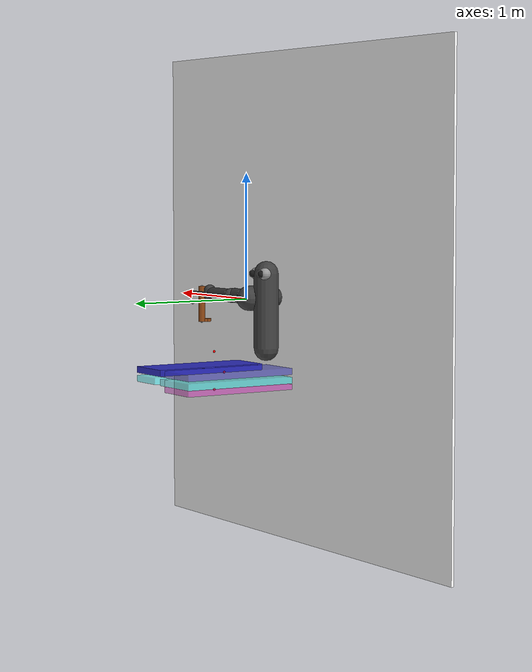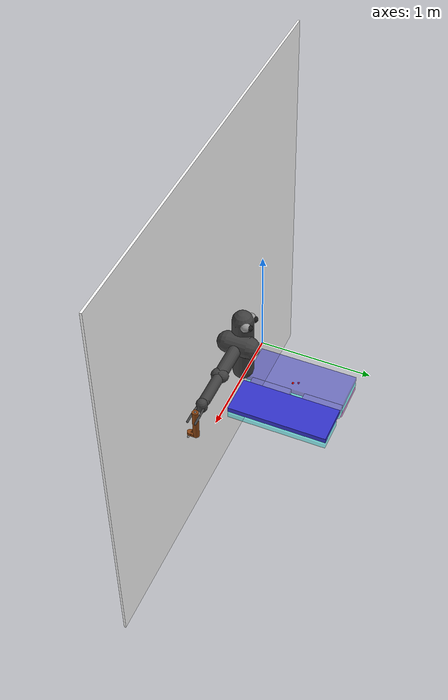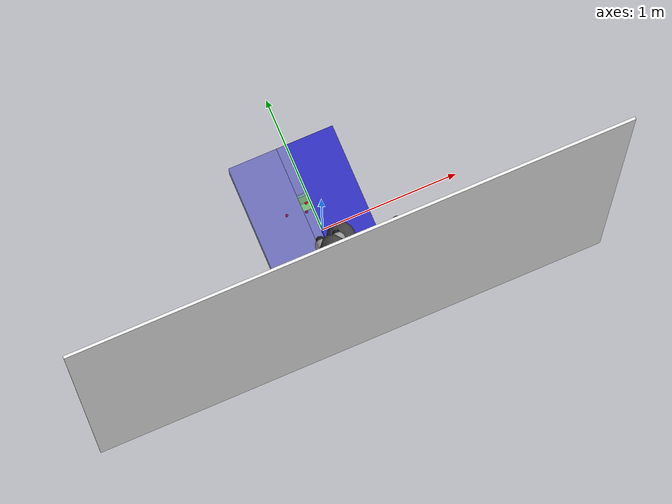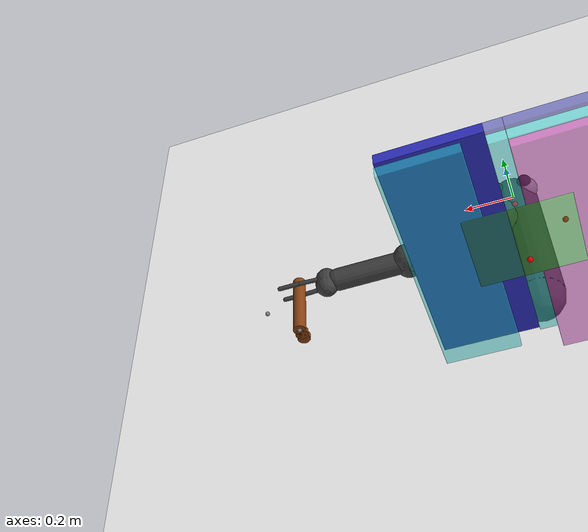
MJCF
<mujoco model="arm3d">

    <compiler inertiafromgeom="true" angle="radian" coordinate="local" />
    <option timestep="0.01" gravity="0 0 0" iterations="20" integrator="Euler" />
    <default>
        <joint armature="0.04" damping="1" limited="true" />
        <geom friction=".5 .1 .1" margin="0.002" condim="1" contype="0" conaffinity="0" />
    </default>
    <visual>
        <map shadowclip="100" shadowscale="0.3"/>
        <headlight ambient="0.8 0.8 0.8" />
    </visual>

    <asset>
        <material name="non-reflect" specular="0" shininess="0"/>
    </asset>

    <worldbody>
        <body name="r_shoulder_pan_link" pos="0 -0.188 0">
            <geom name="e1" type="sphere" rgba="0.6 0.6 0.6 1" pos="-0.06 0.05 0.2" size="0.05" />
            <geom name="e2" type="sphere" rgba="0.6 0.6 0.6 1" pos=" 0.06 0.05 0.2" size="0.05" />
            <geom name="e1p" type="sphere" rgba="0.1 0.1 0.1 1" pos="-0.06 0.09 0.2" size="0.03" />
            <geom name="e2p" type="sphere" rgba="0.1 0.1 0.1 1" pos=" 0.06 0.09 0.2" size="0.03" />
            <geom name="sp" type="capsule" fromto="0 0 -0.4 0 0 0.2" size="0.1" contype="1" conaffinity="1" rgba="0.25 0.25 0.25 1"/>
            <joint name="r_shoulder_pan_joint" type="hinge" pos="0 0 0" axis="0 0 1" range="-2.2854 1.714602" damping="10.0" />

            <body name="r_shoulder_lift_link" pos="0.1 0 0">
                <geom name="sl" type="capsule" fromto="0 -0.1 0 0 0.1 0" size="0.1" contype="1" conaffinity="1" rgba="0.25 0.25 0.25 1"/>
                <joint name="r_shoulder_lift_joint" type="hinge" pos="0 0 0" axis="0 1 0" range="-0.5236 1.3963" damping="10.0" />

                <body name="r_upper_arm_roll_link" pos="0 0 0">
                    <geom name="uar" type="capsule" fromto="-0.1 0 0 0.1 0 0" size="0.02" rgba="0.25 0.25 0.25 1" />
                    <joint name="r_upper_arm_roll_joint" type="hinge" pos="0 0 0" axis="1 0 0" range="-3.9 0.8" damping="0.1" />

                    <body name="r_upper_arm_link" pos="0 0 0">
                        <geom name="ua" type="capsule" fromto="0 0 0 0.4 0 0" size="0.06"  contype="1" conaffinity="1" rgba="0.25 0.25 0.25 1"/>

                        <body name="r_elbow_flex_link" pos="0.4 0 0">
                            <geom name="ef" type="capsule" fromto="0 -0.02 0 0.0 0.02 0" size="0.06" rgba="0.25 0.25 0.25 1"/>
                            <joint name="r_elbow_flex_joint" type="hinge" pos="0 0 0" axis="0 1 0" range="-2.3213 0" damping="1.0" />

                            <body name="r_forearm_roll_link" pos="0 0 0">
                                <geom name="fr" type="capsule" fromto="-0.1 0 0 0.1 0 0" size="0.02" rgba="0.25 0.25 0.25 1"/>
                                <joint name="r_forearm_roll_joint" type="hinge" pos="0 0 0" axis="1 0 0" range="-3.15 3.15" damping=".1" />

                                <body name="r_forearm_link" pos="0 0 0">
                                    <geom name="fa" type="capsule" fromto="0 0 0 0.321 0 0" size="0.05"  contype="1" conaffinity="1" rgba="0.25 0.25 0.25 1"/>

                                    <body name="r_wrist_flex_link" pos="0.321 0 0">
                                        <geom name="wf" type="capsule" fromto="0 -0.02 0 0 0.02 0" size="0.01" rgba="0.25 0.25 0.25 1"/>
                                        <joint name="r_wrist_flex_joint" type="hinge" pos="0 0 0" axis="0 1 0" range="-2.094 0" damping=".1" />

                                        <body name="r_wrist_roll_link" pos="0 0 0">
                                            <geom name="wr" type="capsule" fromto="-0.02 0 0 0.02 0 0" size="0.01" rgba="0.25 0.25 0.25 1"/>
                                            <joint name="r_wrist_roll_joint" type="hinge" pos="0 0 0" axis="1 0 0" range="-3.15 3.15" damping="0.1" />

                                            <body name="r_gripper_palm_link" pos="0 0 0">
                                                <geom name="pl" type="capsule" fromto="0.05 0 -0.02 0.05 0 0.02" size="0.05" rgba="0.25 0.25 0.25 1"/>

                                                <body name="r_gripper_tool_frame" pos="0.18 0 0">
                                                    <site name="leg_bottom" pos="0 0 -0.25" size="0.01" />
                                                    <site name="leg_top" pos="0 0 0.05" size="0.01" />
                                                    <site name="leg_right" pos="0.15 0 -0.1" size="0.01" />
                                                    <body name="key" pos="0 0 -0.0">
                                                        <geom name="key_geom" rgba="0.545098 0.270588 0.07450987 1" type="cylinder" fromto="0 0 -0.25 0 0 0.05" size="0.028" density="2000" contype="1" conaffinity="1" />
                                                    </body>
                                                    <body name="key_head1" pos="0 -0.028 -0.225">
                                                        <geom name="key_head_geom1" rgba="0.545098 0.270588 0.07450987 1" type="cylinder" fromto="0 0 0 0 0 -0.025" size="0.028" density="2000" contype="1" conaffinity="1" />
                                                    </body>
                                                    <body name="key_head2" pos="0 -0.056 -0.225">
                                                        <geom name="key_head_geom2" rgba="0.545098 0.270588 0.07450987 1" type="cylinder" fromto="0 0 0 0 0 -0.025" size="0.028" density="2000" contype="1" conaffinity="1" />
                                                    </body>
                                                </body>

                                                <body name="r_gripper_l_finger_link" pos="0.07691 0.03 0">
                                                    <geom name="gf3" type="capsule" fromto="0 0 0 0.09137 0.00495 0" size="0.01" contype="1" conaffinity="1" rgba="0.25 0.25 0.25 1"/>

                                                    <body name="r_gripper_l_finger_tip_link" pos="0.09137 0.00495 0">
                                                        <geom name="gf4" type="capsule" fromto="0 0 0 0.09137 0.0 0" size="0.01" contype="1" conaffinity="1" rgba="0.25 0.25 0.25 1"/>
                                                    </body>
                                                </body>

                                                <body name="r_gripper_r_finger_link" pos="0.07691 -0.03 0">
                                                    <geom name="gf1" type="capsule" fromto="0 0 0 0.09137 -0.00495 0" size="0.01" contype="1" conaffinity="1" rgba="0.25 0.25 0.25 1"/>

                                                    <body name="r_gripper_r_finger_tip_link" pos="0.09137 -0.00495 0">
                                                        <geom name="gf2" type="capsule" fromto="0 0 0 0.09137 0.0 0" size="0.01" contype="1" conaffinity="1" rgba="0.25 0.25 0.25 1"/>
                                                    </body>
                                                </body>
                                            </body>
                                        </body>
                                    </body>
                                </body>
                            </body>
                        </body>
                    </body>
                </body>
            </body>
        </body>

        <body name="g1" pos="0.0 0.3 -0.7">
            <geom name="g1" type="sphere" rgba="1.0 0.0 0.0 1" pos="0.0 0.0 0.0" size="0.01" />
        </body>
        <body name="g2" pos="0.0 0.3 -0.4">
            <geom name="g2" type="sphere" rgba="1.0 0.0 0.0 1" pos="0.0 0.0 0.0" size="0.01" />
        </body>
        <body name="g3" pos="-0.15 0.3 -0.55">
            <geom name="g3" type="sphere" rgba="1.0 0.0 0.0 1" pos="0.0 0.0 0.0" size="0.01" />
        </body>

        <body name="w1" pos="0.216 0.3 -0.55">
            <geom name="w1" rgba="0.2 0.2 0.8 1" type="box" size="0.183 0.469 0.025" contype="1" conaffinity="1" />
        </body>

        <body name="w2" pos="-0.216 0.3 -0.55">
            <geom name="w2" rgba="0.2 0.2 0.8 0.5" type="box" size="0.183 0.469 0.025" contype="1" conaffinity="1" />
        </body>

        <body name="w3" pos="0.0 0.586 -0.55">
            <geom name="w3" rgba="0.2 0.2 0.8 0.5" type="box" size="0.032 0.183 0.025" contype="1" conaffinity="1" />
        </body>

        <body name="w4" pos="0.0 0.084 -0.55">
            <geom name="w4" rgba="0.2 0.2 0.8 0.5" type="box" size="0.032 0.19 0.025" contype="1" conaffinity="1" />  <!--<0.19 was 0.183>-->
        </body>

        <body name="wa1" pos="0.256 0.3 -0.62">
            <geom name="wa1" rgba="0.2 1 1 0.5" type="box" size="0.143 0.469 0.025" contype="1" conaffinity="1" />
        </body>

        <body name="wa2" pos="-0.216 0.3 -0.62">
            <geom name="wa2" rgba="0.2 1 1 0.5" type="box" size="0.183 0.469 0.025" contype="1" conaffinity="1" />
        </body>

        <body name="wa3" pos="0.0 0.586 -0.62">
            <geom name="wa3" rgba="0.2 1 1 0.5" type="box" size="0.032 0.183 0.025" contype="1" conaffinity="1" />
        </body>

        <body name="wa4" pos="0.0 0.084 -0.62">
            <geom name="wa4" rgba="0.2 1 1 0.5" type="box" size="0.032 0.19 0.025" contype="1" conaffinity="1" />  <!--<0.19 was 0.183>-->
        </body>

        <body name="wb1" pos="0.0 0.38 -0.648">
            <geom name="wb1" rgba="0.1 0.5 0.1 0.5" type="box" size="0.183 0.025 0.002" contype="1" conaffinity="1" />
        </body>

        <body name="wb2" pos="0.0 0.38 -0.695">
            <geom name="wb2" rgba="0.2 0.8 0.2 0.5" type="box" size="0.183 0.15 0.002" contype="1" conaffinity="1" />
        </body>

        <body name="wb3" pos="-0.216 0.3 -0.6715">
            <geom name="wb3" rgba="0.9 0.2 0.8 0.5" type="box" size="0.183 0.469 0.0205" contype="1" conaffinity="1" />
        </body>

        <body name="background" pos="0 -0.5 0">
            <geom name="background" rgba="1 1 1 1" type="box" size="2 0.01 2" contype="2" conaffinity="2" material="non-reflect"/>
        </body>

    </worldbody>

    <actuator>
        <motor joint="r_shoulder_pan_joint" ctrlrange="-1.0 1.0" ctrllimited="true" />
        <motor joint="r_shoulder_lift_joint" ctrlrange="-1.0 1.0" ctrllimited="true" />
        <motor joint="r_upper_arm_roll_joint" ctrlrange="-1.0 1.0" ctrllimited="true" />
        <motor joint="r_elbow_flex_joint" ctrlrange="-1.0 1.0" ctrllimited="true" />
        <motor joint="r_forearm_roll_joint" ctrlrange="-1.0 1.0" ctrllimited="true" />
        <motor joint="r_wrist_flex_joint" ctrlrange="-1.0 1.0" ctrllimited="true" />
        <motor joint="r_wrist_roll_joint" ctrlrange="-1.0 1.0" ctrllimited="true" />
    </actuator>

</mujoco>
